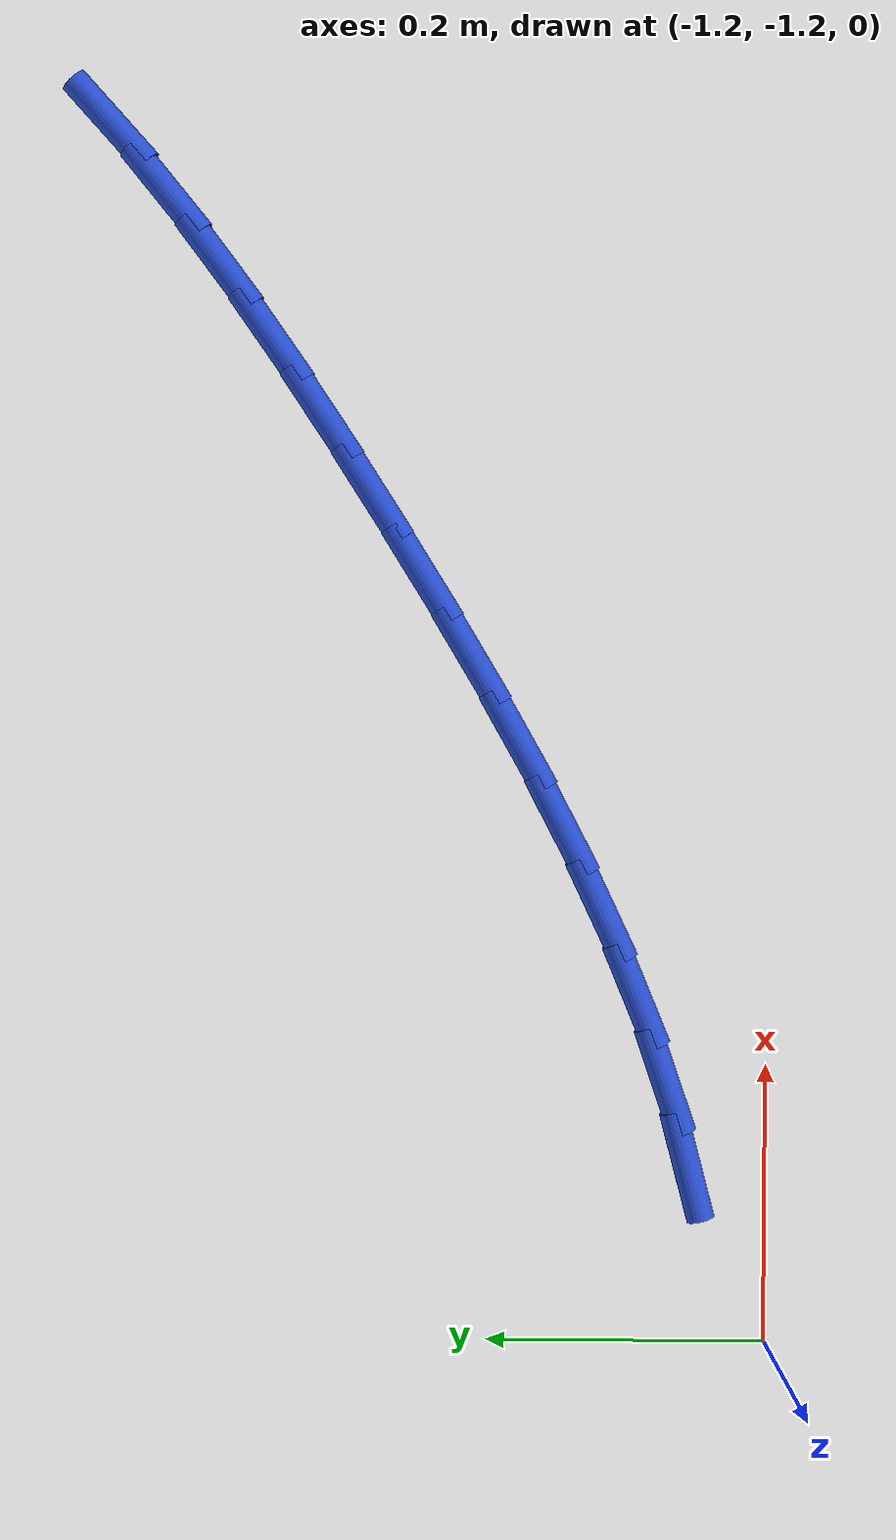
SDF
<sdf version="1.6">
 <world name="default">
  <model name="ground_plane">
   <static>1</static>
   <link name="link">
    <collision name="collision">
     <geometry><plane><normal>0 0 1</normal><size>100 100</size></plane></geometry>
     <surface><friction><ode><mu>100</mu><mu2>50</mu2></ode></friction></surface>
    </collision>
    <visual name="visual">
     <cast_shadows>0</cast_shadows>
     <geometry><plane><normal>0 0 1</normal><size>100 100</size></plane></geometry>
     <material>
      <script><uri>file://media/materials/scripts/gazebo.material</uri><name>Gazebo/WhiteGlow</name></script>
     </material>
    </visual>
   </link>
  </model>
  <model name="line">
   <link name="link_84">
    <pose>-1.0711788437799035 -1.142581059206102 0.01 0 1.57 0.2597616269790735</pose>
    <collision name="collision">
     <geometry><cylinder><radius>0.01</radius><length>0.08</length></cylinder></geometry>
    </collision>
    <visual name="visual">
     <material>
      <script><name>Gazebo/Blue</name><uri>file://media/materials/scripts/gazebo.material</uri></script>
     </material>
     <geometry><cylinder><radius>0.01</radius><length>0.08</length></cylinder></geometry>
    </visual>
   </link>
   <link name="link_85">
    <pose>-1.0103849325752672 -1.1264240854002525 0.01 0 1.57 0.3329891720371311</pose>
    <collision name="collision">
     <geometry><cylinder><radius>0.01</radius><length>0.08</length></cylinder></geometry>
    </collision>
    <visual name="visual">
     <material>
      <script><name>Gazebo/Blue</name><uri>file://media/materials/scripts/gazebo.material</uri></script>
     </material>
     <geometry><cylinder><radius>0.01</radius><length>0.08</length></cylinder></geometry>
    </visual>
   </link>
   <link name="link_86">
    <pose>-0.949347778696276 -1.1053132765577967 0.01 0 1.57 0.3938356943566092</pose>
    <collision name="collision">
     <geometry><cylinder><radius>0.01</radius><length>0.08</length></cylinder></geometry>
    </collision>
    <visual name="visual">
     <material>
      <script><name>Gazebo/Blue</name><uri>file://media/materials/scripts/gazebo.material</uri></script>
     </material>
     <geometry><cylinder><radius>0.01</radius><length>0.08</length></cylinder></geometry>
    </visual>
   </link>
   <link name="link_87">
    <pose>-0.8882893851312974 -1.0799407166576493 0.01 0 1.57 0.4439154969826032</pose>
    <collision name="collision">
     <geometry><cylinder><radius>0.01</radius><length>0.08</length></cylinder></geometry>
    </collision>
    <visual name="visual">
     <material>
      <script><name>Gazebo/Blue</name><uri>file://media/materials/scripts/gazebo.material</uri></script>
     </material>
     <geometry><cylinder><radius>0.01</radius><length>0.08</length></cylinder></geometry>
    </visual>
   </link>
   <link name="link_88">
    <pose>-0.8274317548687019 -1.0509984896787261 0.01 0 1.57 0.48463323616877746</pose>
    <collision name="collision">
     <geometry><cylinder><radius>0.01</radius><length>0.08</length></cylinder></geometry>
    </collision>
    <visual name="visual">
     <material>
      <script><name>Gazebo/Blue</name><uri>file://media/materials/scripts/gazebo.material</uri></script>
     </material>
     <geometry><cylinder><radius>0.01</radius><length>0.08</length></cylinder></geometry>
    </visual>
   </link>
   <link name="link_89">
    <pose>-0.7669968908968575 -1.0191786795999427 0.01 0 1.57 0.5171206720155145</pose>
    <collision name="collision">
     <geometry><cylinder><radius>0.01</radius><length>0.08</length></cylinder></geometry>
    </collision>
    <visual name="visual">
     <material>
      <script><name>Gazebo/Blue</name><uri>file://media/materials/scripts/gazebo.material</uri></script>
     </material>
     <geometry><cylinder><radius>0.01</radius><length>0.08</length></cylinder></geometry>
    </visual>
   </link>
   <link name="link_90">
    <pose>-0.7072067962041351 -0.9851733704002152 0.01 0 1.57 0.5422236154091415</pose>
    <collision name="collision">
     <geometry><cylinder><radius>0.01</radius><length>0.08</length></cylinder></geometry>
    </collision>
    <visual name="visual">
     <material>
      <script><name>Gazebo/Blue</name><uri>file://media/materials/scripts/gazebo.material</uri></script>
     </material>
     <geometry><cylinder><radius>0.01</radius><length>0.08</length></cylinder></geometry>
    </visual>
   </link>
   <link name="link_91">
    <pose>-0.6482834737789017 -0.9496746460584582 0.01 0 1.57 0.5605051694230783</pose>
    <collision name="collision">
     <geometry><cylinder><radius>0.01</radius><length>0.08</length></cylinder></geometry>
    </collision>
    <visual name="visual">
     <material>
      <script><name>Gazebo/Blue</name><uri>file://media/materials/scripts/gazebo.material</uri></script>
     </material>
     <geometry><cylinder><radius>0.01</radius><length>0.08</length></cylinder></geometry>
    </visual>
   </link>
   <link name="link_92">
    <pose>-0.5904489266095291 -0.9133745905535889 0.01 0 1.57 0.5738449093079919</pose>
    <collision name="collision">
     <geometry><cylinder><radius>0.01</radius><length>0.08</length></cylinder></geometry>
    </collision>
    <visual name="visual">
     <material>
      <script><name>Gazebo/Blue</name><uri>file://media/materials/scripts/gazebo.material</uri></script>
     </material>
     <geometry><cylinder><radius>0.01</radius><length>0.08</length></cylinder></geometry>
    </visual>
   </link>
   <link name="link_93">
    <pose>-0.5339302481199993 -0.8768405474447054 0.01 0 1.57 0.5911307768448161</pose>
    <collision name="collision">
     <geometry><cylinder><radius>0.01</radius><length>0.08</length></cylinder></geometry>
    </collision>
    <visual name="visual">
     <material>
      <script><name>Gazebo/Blue</name><uri>file://media/materials/scripts/gazebo.material</uri></script>
     </material>
     <geometry><cylinder><radius>0.01</radius><length>0.08</length></cylinder></geometry>
    </visual>
   </link>
   <link name="link_94">
    <pose>-0.47898228495478656 -0.8399597714661763 0.01 0 1.57 0.6156595962335891</pose>
    <collision name="collision">
     <geometry><cylinder><radius>0.01</radius><length>0.08</length></cylinder></geometry>
    </collision>
    <visual name="visual">
     <material>
      <script><name>Gazebo/Blue</name><uri>file://media/materials/scripts/gazebo.material</uri></script>
     </material>
     <geometry><cylinder><radius>0.01</radius><length>0.08</length></cylinder></geometry>
    </visual>
   </link>
   <link name="link_95">
    <pose>-0.425869295533555 -0.8023888831046165 0.01 0 1.57 0.647806029773494</pose>
    <collision name="collision">
     <geometry><cylinder><radius>0.01</radius><length>0.08</length></cylinder></geometry>
    </collision>
    <visual name="visual">
     <material>
      <script><name>Gazebo/Blue</name><uri>file://media/materials/scripts/gazebo.material</uri></script>
     </material>
     <geometry><cylinder><radius>0.01</radius><length>0.08</length></cylinder></geometry>
    </visual>
   </link>
   <link name="link_96">
    <pose>-0.3748555458855917 -0.7637843163739504 0.01 0 1.57 0.687905765921498</pose>
    <collision name="collision">
     <geometry><cylinder><radius>0.01</radius><length>0.08</length></cylinder></geometry>
    </collision>
    <visual name="visual">
     <material>
      <script><name>Gazebo/Blue</name><uri>file://media/materials/scripts/gazebo.material</uri></script>
     </material>
     <geometry><cylinder><radius>0.01</radius><length>0.08</length></cylinder></geometry>
    </visual>
   </link>
   <link name="link_97">
    <pose>-0.32620530204018233 -0.7238025052881006 0.01 0 1.57 0.736194864934328</pose>
    <collision name="collision">
     <geometry><cylinder><radius>0.01</radius><length>0.08</length></cylinder></geometry>
    </collision>
    <visual name="visual">
     <material>
      <script><name>Gazebo/Blue</name><uri>file://media/materials/scripts/gazebo.material</uri></script>
     </material>
     <geometry><cylinder><radius>0.01</radius><length>0.08</length></cylinder></geometry>
    </visual>
   </link>
  </model>
 </world>
</sdf>
